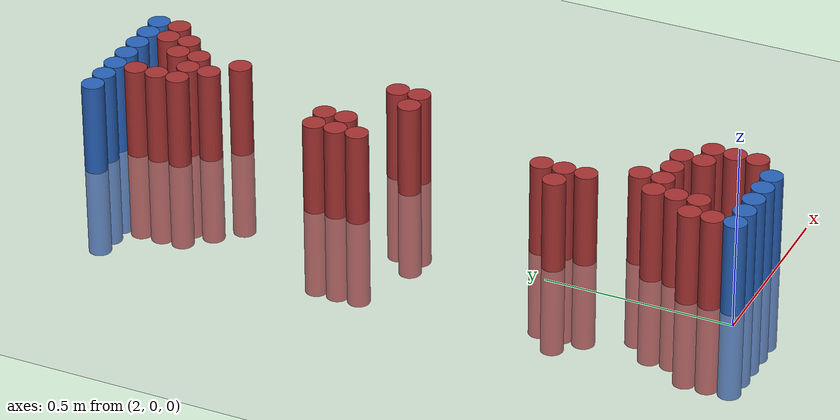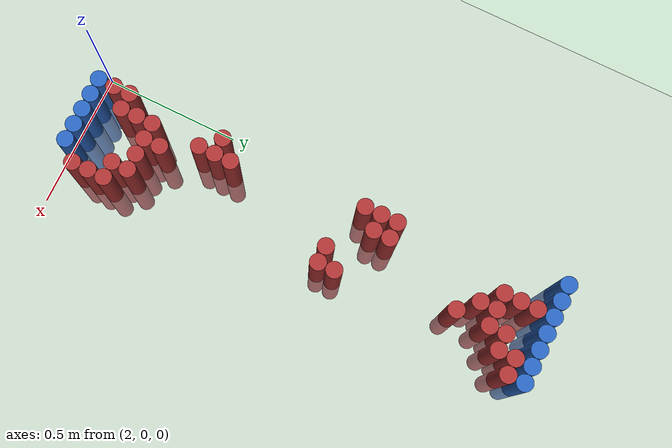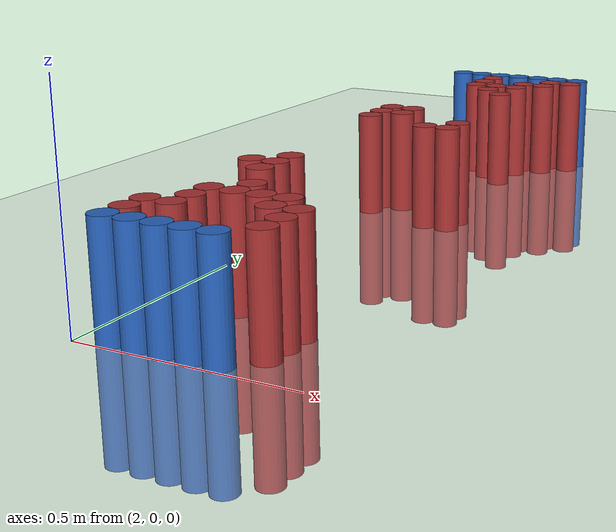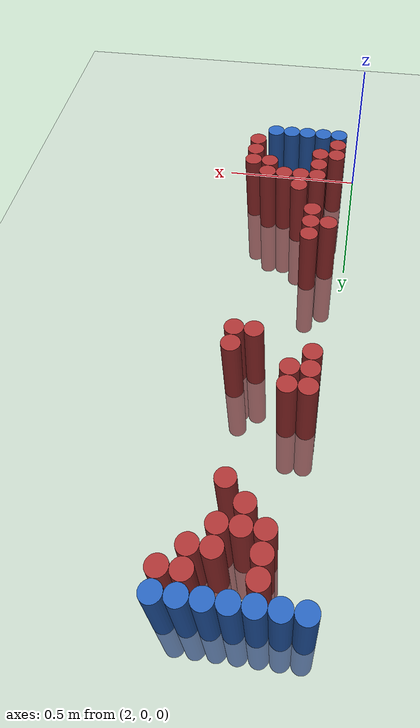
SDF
<sdf version="1.6">
 <world name="default">
  <model name="ground_plane">
   <static>1</static>
   <link name="link">
    <collision name="collision">
     <geometry><plane><normal>0 0 1</normal><size>100 100</size></plane></geometry>
     <surface><friction><ode><mu>100</mu><mu2>50</mu2></ode></friction></surface>
    </collision>
    <visual name="visual">
     <cast_shadows>0</cast_shadows>
     <geometry><plane><normal>0 0 1</normal><size>100 100</size></plane></geometry>
     <material>
      <script><uri>file://media/materials/scripts/gazebo.material</uri><name>Gazebo/Grey</name></script>
     </material>
    </visual>
   </link>
  </model>
  <model name="unit_cylinder_94">
   <static>1</static>
   <pose>2.010000 1.770000 0.000000 0.000000 0.000000 0.000000</pose>
   <link name="link">
    <inertial>
     <mass>1</mass>
     <inertia><ixx>0.145833</ixx><ixy>0</ixy><ixz>0</ixz><iyy>0.145833</iyy><iyz>0</iyz><izz>0.125</izz></inertia>
    </inertial>
    <collision name="collision">
     <geometry><cylinder><radius>0.030000</radius><length>0.5</length></cylinder></geometry>
    </collision>
    <visual name="visual">
     <geometry><cylinder><radius>0.030000</radius><length>0.5</length></cylinder></geometry>
     <material>
      <ambient>0.152000 0.379000 0.720000 1</ambient>
      <diffuse>0.152000 0.379000 0.720000 1</diffuse>
     </material>
     <material>
      <script><name>Gazebo/Grey</name><uri>file://media/materials/scripts/gazebo.material</uri></script>
     </material>
    </visual>
   </link>
  </model>
  <model name="unit_cylinder_95">
   <static>1</static>
   <pose>2.070000 1.770000 0.000000 0.000000 0.000000 0.000000</pose>
   <link name="link">
    <inertial>
     <mass>1</mass>
     <inertia><ixx>0.145833</ixx><ixy>0</ixy><ixz>0</ixz><iyy>0.145833</iyy><iyz>0</iyz><izz>0.125</izz></inertia>
    </inertial>
    <collision name="collision">
     <geometry><cylinder><radius>0.030000</radius><length>0.5</length></cylinder></geometry>
    </collision>
    <visual name="visual">
     <geometry><cylinder><radius>0.030000</radius><length>0.5</length></cylinder></geometry>
     <material>
      <ambient>0.152000 0.379000 0.720000 1</ambient>
      <diffuse>0.152000 0.379000 0.720000 1</diffuse>
     </material>
     <material>
      <script><name>Gazebo/Grey</name><uri>file://media/materials/scripts/gazebo.material</uri></script>
     </material>
    </visual>
   </link>
  </model>
  <model name="unit_cylinder_96">
   <static>1</static>
   <pose>2.130000 1.770000 0.000000 0.000000 0.000000 0.000000</pose>
   <link name="link">
    <inertial>
     <mass>1</mass>
     <inertia><ixx>0.145833</ixx><ixy>0</ixy><ixz>0</ixz><iyy>0.145833</iyy><iyz>0</iyz><izz>0.125</izz></inertia>
    </inertial>
    <collision name="collision">
     <geometry><cylinder><radius>0.030000</radius><length>0.5</length></cylinder></geometry>
    </collision>
    <visual name="visual">
     <geometry><cylinder><radius>0.030000</radius><length>0.5</length></cylinder></geometry>
     <material>
      <ambient>0.152000 0.379000 0.720000 1</ambient>
      <diffuse>0.152000 0.379000 0.720000 1</diffuse>
     </material>
     <material>
      <script><name>Gazebo/Grey</name><uri>file://media/materials/scripts/gazebo.material</uri></script>
     </material>
    </visual>
   </link>
  </model>
  <model name="unit_cylinder_97">
   <static>1</static>
   <pose>2.190000 1.770000 0.000000 0.000000 0.000000 0.000000</pose>
   <link name="link">
    <inertial>
     <mass>1</mass>
     <inertia><ixx>0.145833</ixx><ixy>0</ixy><ixz>0</ixz><iyy>0.145833</iyy><iyz>0</iyz><izz>0.125</izz></inertia>
    </inertial>
    <collision name="collision">
     <geometry><cylinder><radius>0.030000</radius><length>0.5</length></cylinder></geometry>
    </collision>
    <visual name="visual">
     <geometry><cylinder><radius>0.030000</radius><length>0.5</length></cylinder></geometry>
     <material>
      <ambient>0.152000 0.379000 0.720000 1</ambient>
      <diffuse>0.152000 0.379000 0.720000 1</diffuse>
     </material>
     <material>
      <script><name>Gazebo/Grey</name><uri>file://media/materials/scripts/gazebo.material</uri></script>
     </material>
    </visual>
   </link>
  </model>
  <model name="unit_cylinder_98">
   <static>1</static>
   <pose>2.250000 1.770000 0.000000 0.000000 0.000000 0.000000</pose>
   <link name="link">
    <inertial>
     <mass>1</mass>
     <inertia><ixx>0.145833</ixx><ixy>0</ixy><ixz>0</ixz><iyy>0.145833</iyy><iyz>0</iyz><izz>0.125</izz></inertia>
    </inertial>
    <collision name="collision">
     <geometry><cylinder><radius>0.030000</radius><length>0.5</length></cylinder></geometry>
    </collision>
    <visual name="visual">
     <geometry><cylinder><radius>0.030000</radius><length>0.5</length></cylinder></geometry>
     <material>
      <ambient>0.152000 0.379000 0.720000 1</ambient>
      <diffuse>0.152000 0.379000 0.720000 1</diffuse>
     </material>
     <material>
      <script><name>Gazebo/Grey</name><uri>file://media/materials/scripts/gazebo.material</uri></script>
     </material>
    </visual>
   </link>
  </model>
  <model name="unit_cylinder_99">
   <static>1</static>
   <pose>2.310000 1.770000 0.000000 0.000000 0.000000 0.000000</pose>
   <link name="link">
    <inertial>
     <mass>1</mass>
     <inertia><ixx>0.145833</ixx><ixy>0</ixy><ixz>0</ixz><iyy>0.145833</iyy><iyz>0</iyz><izz>0.125</izz></inertia>
    </inertial>
    <collision name="collision">
     <geometry><cylinder><radius>0.030000</radius><length>0.5</length></cylinder></geometry>
    </collision>
    <visual name="visual">
     <geometry><cylinder><radius>0.030000</radius><length>0.5</length></cylinder></geometry>
     <material>
      <ambient>0.152000 0.379000 0.720000 1</ambient>
      <diffuse>0.152000 0.379000 0.720000 1</diffuse>
     </material>
     <material>
      <script><name>Gazebo/Grey</name><uri>file://media/materials/scripts/gazebo.material</uri></script>
     </material>
    </visual>
   </link>
  </model>
  <model name="unit_cylinder_100">
   <static>1</static>
   <pose>2.370000 1.770000 0.000000 0.000000 0.000000 0.000000</pose>
   <link name="link">
    <inertial>
     <mass>1</mass>
     <inertia><ixx>0.145833</ixx><ixy>0</ixy><ixz>0</ixz><iyy>0.145833</iyy><iyz>0</iyz><izz>0.125</izz></inertia>
    </inertial>
    <collision name="collision">
     <geometry><cylinder><radius>0.030000</radius><length>0.5</length></cylinder></geometry>
    </collision>
    <visual name="visual">
     <geometry><cylinder><radius>0.030000</radius><length>0.5</length></cylinder></geometry>
     <material>
      <ambient>0.152000 0.379000 0.720000 1</ambient>
      <diffuse>0.152000 0.379000 0.720000 1</diffuse>
     </material>
     <material>
      <script><name>Gazebo/Grey</name><uri>file://media/materials/scripts/gazebo.material</uri></script>
     </material>
    </visual>
   </link>
  </model>
  <model name="unit_cylinder_125">
   <static>1</static>
   <pose>2.130000 1.710000 0.000000 0.000000 0.000000 0.000000</pose>
   <link name="link">
    <inertial>
     <mass>1</mass>
     <inertia><ixx>0.145833</ixx><ixy>0</ixy><ixz>0</ixz><iyy>0.145833</iyy><iyz>0</iyz><izz>0.125</izz></inertia>
    </inertial>
    <collision name="collision">
     <geometry><cylinder><radius>0.030000</radius><length>0.5</length></cylinder></geometry>
    </collision>
    <visual name="visual">
     <geometry><cylinder><radius>0.030000</radius><length>0.5</length></cylinder></geometry>
     <material>
      <ambient>0.648000 0.192000 0.192000 1</ambient>
      <diffuse>0.648000 0.192000 0.192000 1</diffuse>
     </material>
     <material>
      <script><name>Gazebo/Grey</name><uri>file://media/materials/scripts/gazebo.material</uri></script>
     </material>
    </visual>
   </link>
  </model>
  <model name="unit_cylinder_126">
   <static>1</static>
   <pose>2.310000 1.710000 0.000000 0.000000 0.000000 0.000000</pose>
   <link name="link">
    <inertial>
     <mass>1</mass>
     <inertia><ixx>0.145833</ixx><ixy>0</ixy><ixz>0</ixz><iyy>0.145833</iyy><iyz>0</iyz><izz>0.125</izz></inertia>
    </inertial>
    <collision name="collision">
     <geometry><cylinder><radius>0.030000</radius><length>0.5</length></cylinder></geometry>
    </collision>
    <visual name="visual">
     <geometry><cylinder><radius>0.030000</radius><length>0.5</length></cylinder></geometry>
     <material>
      <ambient>0.648000 0.192000 0.192000 1</ambient>
      <diffuse>0.648000 0.192000 0.192000 1</diffuse>
     </material>
     <material>
      <script><name>Gazebo/Grey</name><uri>file://media/materials/scripts/gazebo.material</uri></script>
     </material>
    </visual>
   </link>
  </model>
  <model name="unit_cylinder_127">
   <static>1</static>
   <pose>2.370000 1.710000 0.000000 0.000000 0.000000 0.000000</pose>
   <link name="link">
    <inertial>
     <mass>1</mass>
     <inertia><ixx>0.145833</ixx><ixy>0</ixy><ixz>0</ixz><iyy>0.145833</iyy><iyz>0</iyz><izz>0.125</izz></inertia>
    </inertial>
    <collision name="collision">
     <geometry><cylinder><radius>0.030000</radius><length>0.5</length></cylinder></geometry>
    </collision>
    <visual name="visual">
     <geometry><cylinder><radius>0.030000</radius><length>0.5</length></cylinder></geometry>
     <material>
      <ambient>0.648000 0.192000 0.192000 1</ambient>
      <diffuse>0.648000 0.192000 0.192000 1</diffuse>
     </material>
     <material>
      <script><name>Gazebo/Grey</name><uri>file://media/materials/scripts/gazebo.material</uri></script>
     </material>
    </visual>
   </link>
  </model>
  <model name="unit_cylinder_138">
   <static>1</static>
   <pose>2.130000 1.650000 0.000000 0.000000 0.000000 0.000000</pose>
   <link name="link">
    <inertial>
     <mass>1</mass>
     <inertia><ixx>0.145833</ixx><ixy>0</ixy><ixz>0</ixz><iyy>0.145833</iyy><iyz>0</iyz><izz>0.125</izz></inertia>
    </inertial>
    <collision name="collision">
     <geometry><cylinder><radius>0.030000</radius><length>0.5</length></cylinder></geometry>
    </collision>
    <visual name="visual">
     <geometry><cylinder><radius>0.030000</radius><length>0.5</length></cylinder></geometry>
     <material>
      <ambient>0.648000 0.192000 0.192000 1</ambient>
      <diffuse>0.648000 0.192000 0.192000 1</diffuse>
     </material>
     <material>
      <script><name>Gazebo/Grey</name><uri>file://media/materials/scripts/gazebo.material</uri></script>
     </material>
    </visual>
   </link>
  </model>
  <model name="unit_cylinder_139">
   <static>1</static>
   <pose>2.250000 1.650000 0.000000 0.000000 0.000000 0.000000</pose>
   <link name="link">
    <inertial>
     <mass>1</mass>
     <inertia><ixx>0.145833</ixx><ixy>0</ixy><ixz>0</ixz><iyy>0.145833</iyy><iyz>0</iyz><izz>0.125</izz></inertia>
    </inertial>
    <collision name="collision">
     <geometry><cylinder><radius>0.030000</radius><length>0.5</length></cylinder></geometry>
    </collision>
    <visual name="visual">
     <geometry><cylinder><radius>0.030000</radius><length>0.5</length></cylinder></geometry>
     <material>
      <ambient>0.648000 0.192000 0.192000 1</ambient>
      <diffuse>0.648000 0.192000 0.192000 1</diffuse>
     </material>
     <material>
      <script><name>Gazebo/Grey</name><uri>file://media/materials/scripts/gazebo.material</uri></script>
     </material>
    </visual>
   </link>
  </model>
  <model name="unit_cylinder_140">
   <static>1</static>
   <pose>2.310000 1.650000 0.000000 0.000000 0.000000 0.000000</pose>
   <link name="link">
    <inertial>
     <mass>1</mass>
     <inertia><ixx>0.145833</ixx><ixy>0</ixy><ixz>0</ixz><iyy>0.145833</iyy><iyz>0</iyz><izz>0.125</izz></inertia>
    </inertial>
    <collision name="collision">
     <geometry><cylinder><radius>0.030000</radius><length>0.5</length></cylinder></geometry>
    </collision>
    <visual name="visual">
     <geometry><cylinder><radius>0.030000</radius><length>0.5</length></cylinder></geometry>
     <material>
      <ambient>0.648000 0.192000 0.192000 1</ambient>
      <diffuse>0.648000 0.192000 0.192000 1</diffuse>
     </material>
     <material>
      <script><name>Gazebo/Grey</name><uri>file://media/materials/scripts/gazebo.material</uri></script>
     </material>
    </visual>
   </link>
  </model>
  <model name="unit_cylinder_144">
   <static>1</static>
   <pose>2.130000 1.590000 0.000000 0.000000 0.000000 0.000000</pose>
   <link name="link">
    <inertial>
     <mass>1</mass>
     <inertia><ixx>0.145833</ixx><ixy>0</ixy><ixz>0</ixz><iyy>0.145833</iyy><iyz>0</iyz><izz>0.125</izz></inertia>
    </inertial>
    <collision name="collision">
     <geometry><cylinder><radius>0.030000</radius><length>0.5</length></cylinder></geometry>
    </collision>
    <visual name="visual">
     <geometry><cylinder><radius>0.030000</radius><length>0.5</length></cylinder></geometry>
     <material>
      <ambient>0.648000 0.192000 0.192000 1</ambient>
      <diffuse>0.648000 0.192000 0.192000 1</diffuse>
     </material>
     <material>
      <script><name>Gazebo/Grey</name><uri>file://media/materials/scripts/gazebo.material</uri></script>
     </material>
    </visual>
   </link>
  </model>
  <model name="unit_cylinder_145">
   <static>1</static>
   <pose>2.190000 1.590000 0.000000 0.000000 0.000000 0.000000</pose>
   <link name="link">
    <inertial>
     <mass>1</mass>
     <inertia><ixx>0.145833</ixx><ixy>0</ixy><ixz>0</ixz><iyy>0.145833</iyy><iyz>0</iyz><izz>0.125</izz></inertia>
    </inertial>
    <collision name="collision">
     <geometry><cylinder><radius>0.030000</radius><length>0.5</length></cylinder></geometry>
    </collision>
    <visual name="visual">
     <geometry><cylinder><radius>0.030000</radius><length>0.5</length></cylinder></geometry>
     <material>
      <ambient>0.648000 0.192000 0.192000 1</ambient>
      <diffuse>0.648000 0.192000 0.192000 1</diffuse>
     </material>
     <material>
      <script><name>Gazebo/Grey</name><uri>file://media/materials/scripts/gazebo.material</uri></script>
     </material>
    </visual>
   </link>
  </model>
  <model name="unit_cylinder_146">
   <static>1</static>
   <pose>2.250000 1.590000 0.000000 0.000000 0.000000 0.000000</pose>
   <link name="link">
    <inertial>
     <mass>1</mass>
     <inertia><ixx>0.145833</ixx><ixy>0</ixy><ixz>0</ixz><iyy>0.145833</iyy><iyz>0</iyz><izz>0.125</izz></inertia>
    </inertial>
    <collision name="collision">
     <geometry><cylinder><radius>0.030000</radius><length>0.5</length></cylinder></geometry>
    </collision>
    <visual name="visual">
     <geometry><cylinder><radius>0.030000</radius><length>0.5</length></cylinder></geometry>
     <material>
      <ambient>0.648000 0.192000 0.192000 1</ambient>
      <diffuse>0.648000 0.192000 0.192000 1</diffuse>
     </material>
     <material>
      <script><name>Gazebo/Grey</name><uri>file://media/materials/scripts/gazebo.material</uri></script>
     </material>
    </visual>
   </link>
  </model>
  <model name="unit_cylinder_149">
   <static>1</static>
   <pose>2.190000 1.530000 0.000000 0.000000 0.000000 0.000000</pose>
   <link name="link">
    <inertial>
     <mass>1</mass>
     <inertia><ixx>0.145833</ixx><ixy>0</ixy><ixz>0</ixz><iyy>0.145833</iyy><iyz>0</iyz><izz>0.125</izz></inertia>
    </inertial>
    <collision name="collision">
     <geometry><cylinder><radius>0.030000</radius><length>0.5</length></cylinder></geometry>
    </collision>
    <visual name="visual">
     <geometry><cylinder><radius>0.030000</radius><length>0.5</length></cylinder></geometry>
     <material>
      <ambient>0.648000 0.192000 0.192000 1</ambient>
      <diffuse>0.648000 0.192000 0.192000 1</diffuse>
     </material>
     <material>
      <script><name>Gazebo/Grey</name><uri>file://media/materials/scripts/gazebo.material</uri></script>
     </material>
    </visual>
   </link>
  </model>
  <model name="unit_cylinder_154">
   <static>1</static>
   <pose>2.250000 1.470000 0.000000 0.000000 0.000000 0.000000</pose>
   <link name="link">
    <inertial>
     <mass>1</mass>
     <inertia><ixx>0.145833</ixx><ixy>0</ixy><ixz>0</ixz><iyy>0.145833</iyy><iyz>0</iyz><izz>0.125</izz></inertia>
    </inertial>
    <collision name="collision">
     <geometry><cylinder><radius>0.030000</radius><length>0.5</length></cylinder></geometry>
    </collision>
    <visual name="visual">
     <geometry><cylinder><radius>0.030000</radius><length>0.5</length></cylinder></geometry>
     <material>
      <ambient>0.648000 0.192000 0.192000 1</ambient>
      <diffuse>0.648000 0.192000 0.192000 1</diffuse>
     </material>
     <material>
      <script><name>Gazebo/Grey</name><uri>file://media/materials/scripts/gazebo.material</uri></script>
     </material>
    </visual>
   </link>
  </model>
  <model name="unit_cylinder_174">
   <static>1</static>
   <pose>2.070000 1.170000 0.000000 0.000000 0.000000 0.000000</pose>
   <link name="link">
    <inertial>
     <mass>1</mass>
     <inertia><ixx>0.145833</ixx><ixy>0</ixy><ixz>0</ixz><iyy>0.145833</iyy><iyz>0</iyz><izz>0.125</izz></inertia>
    </inertial>
    <collision name="collision">
     <geometry><cylinder><radius>0.030000</radius><length>0.5</length></cylinder></geometry>
    </collision>
    <visual name="visual">
     <geometry><cylinder><radius>0.030000</radius><length>0.5</length></cylinder></geometry>
     <material>
      <ambient>0.648000 0.192000 0.192000 1</ambient>
      <diffuse>0.648000 0.192000 0.192000 1</diffuse>
     </material>
     <material>
      <script><name>Gazebo/Grey</name><uri>file://media/materials/scripts/gazebo.material</uri></script>
     </material>
    </visual>
   </link>
  </model>
  <model name="unit_cylinder_175">
   <static>1</static>
   <pose>2.130000 1.170000 0.000000 0.000000 0.000000 0.000000</pose>
   <link name="link">
    <inertial>
     <mass>1</mass>
     <inertia><ixx>0.145833</ixx><ixy>0</ixy><ixz>0</ixz><iyy>0.145833</iyy><iyz>0</iyz><izz>0.125</izz></inertia>
    </inertial>
    <collision name="collision">
     <geometry><cylinder><radius>0.030000</radius><length>0.5</length></cylinder></geometry>
    </collision>
    <visual name="visual">
     <geometry><cylinder><radius>0.030000</radius><length>0.5</length></cylinder></geometry>
     <material>
      <ambient>0.648000 0.192000 0.192000 1</ambient>
      <diffuse>0.648000 0.192000 0.192000 1</diffuse>
     </material>
     <material>
      <script><name>Gazebo/Grey</name><uri>file://media/materials/scripts/gazebo.material</uri></script>
     </material>
    </visual>
   </link>
  </model>
  <model name="unit_cylinder_179">
   <static>1</static>
   <pose>2.070000 1.110000 0.000000 0.000000 0.000000 0.000000</pose>
   <link name="link">
    <inertial>
     <mass>1</mass>
     <inertia><ixx>0.145833</ixx><ixy>0</ixy><ixz>0</ixz><iyy>0.145833</iyy><iyz>0</iyz><izz>0.125</izz></inertia>
    </inertial>
    <collision name="collision">
     <geometry><cylinder><radius>0.030000</radius><length>0.5</length></cylinder></geometry>
    </collision>
    <visual name="visual">
     <geometry><cylinder><radius>0.030000</radius><length>0.5</length></cylinder></geometry>
     <material>
      <ambient>0.648000 0.192000 0.192000 1</ambient>
      <diffuse>0.648000 0.192000 0.192000 1</diffuse>
     </material>
     <material>
      <script><name>Gazebo/Grey</name><uri>file://media/materials/scripts/gazebo.material</uri></script>
     </material>
    </visual>
   </link>
  </model>
  <model name="unit_cylinder_180">
   <static>1</static>
   <pose>2.130000 1.110000 0.000000 0.000000 0.000000 0.000000</pose>
   <link name="link">
    <inertial>
     <mass>1</mass>
     <inertia><ixx>0.145833</ixx><ixy>0</ixy><ixz>0</ixz><iyy>0.145833</iyy><iyz>0</iyz><izz>0.125</izz></inertia>
    </inertial>
    <collision name="collision">
     <geometry><cylinder><radius>0.030000</radius><length>0.5</length></cylinder></geometry>
    </collision>
    <visual name="visual">
     <geometry><cylinder><radius>0.030000</radius><length>0.5</length></cylinder></geometry>
     <material>
      <ambient>0.648000 0.192000 0.192000 1</ambient>
      <diffuse>0.648000 0.192000 0.192000 1</diffuse>
     </material>
     <material>
      <script><name>Gazebo/Grey</name><uri>file://media/materials/scripts/gazebo.material</uri></script>
     </material>
    </visual>
   </link>
  </model>
  <model name="unit_cylinder_181">
   <static>1</static>
   <pose>2.070000 1.050000 0.000000 0.000000 0.000000 0.000000</pose>
   <link name="link">
    <inertial>
     <mass>1</mass>
     <inertia><ixx>0.145833</ixx><ixy>0</ixy><ixz>0</ixz><iyy>0.145833</iyy><iyz>0</iyz><izz>0.125</izz></inertia>
    </inertial>
    <collision name="collision">
     <geometry><cylinder><radius>0.030000</radius><length>0.5</length></cylinder></geometry>
    </collision>
    <visual name="visual">
     <geometry><cylinder><radius>0.030000</radius><length>0.5</length></cylinder></geometry>
     <material>
      <ambient>0.648000 0.192000 0.192000 1</ambient>
      <diffuse>0.648000 0.192000 0.192000 1</diffuse>
     </material>
     <material>
      <script><name>Gazebo/Grey</name><uri>file://media/materials/scripts/gazebo.material</uri></script>
     </material>
    </visual>
   </link>
  </model>
  <model name="unit_cylinder_182">
   <static>1</static>
   <pose>2.310000 1.050000 0.000000 0.000000 0.000000 0.000000</pose>
   <link name="link">
    <inertial>
     <mass>1</mass>
     <inertia><ixx>0.145833</ixx><ixy>0</ixy><ixz>0</ixz><iyy>0.145833</iyy><iyz>0</iyz><izz>0.125</izz></inertia>
    </inertial>
    <collision name="collision">
     <geometry><cylinder><radius>0.030000</radius><length>0.5</length></cylinder></geometry>
    </collision>
    <visual name="visual">
     <geometry><cylinder><radius>0.030000</radius><length>0.5</length></cylinder></geometry>
     <material>
      <ambient>0.648000 0.192000 0.192000 1</ambient>
      <diffuse>0.648000 0.192000 0.192000 1</diffuse>
     </material>
     <material>
      <script><name>Gazebo/Grey</name><uri>file://media/materials/scripts/gazebo.material</uri></script>
     </material>
    </visual>
   </link>
  </model>
  <model name="unit_cylinder_183">
   <static>1</static>
   <pose>2.250000 0.990000 0.000000 0.000000 0.000000 0.000000</pose>
   <link name="link">
    <inertial>
     <mass>1</mass>
     <inertia><ixx>0.145833</ixx><ixy>0</ixy><ixz>0</ixz><iyy>0.145833</iyy><iyz>0</iyz><izz>0.125</izz></inertia>
    </inertial>
    <collision name="collision">
     <geometry><cylinder><radius>0.030000</radius><length>0.5</length></cylinder></geometry>
    </collision>
    <visual name="visual">
     <geometry><cylinder><radius>0.030000</radius><length>0.5</length></cylinder></geometry>
     <material>
      <ambient>0.648000 0.192000 0.192000 1</ambient>
      <diffuse>0.648000 0.192000 0.192000 1</diffuse>
     </material>
     <material>
      <script><name>Gazebo/Grey</name><uri>file://media/materials/scripts/gazebo.material</uri></script>
     </material>
    </visual>
   </link>
  </model>
  <model name="unit_cylinder_184">
   <static>1</static>
   <pose>2.310000 0.990000 0.000000 0.000000 0.000000 0.000000</pose>
   <link name="link">
    <inertial>
     <mass>1</mass>
     <inertia><ixx>0.145833</ixx><ixy>0</ixy><ixz>0</ixz><iyy>0.145833</iyy><iyz>0</iyz><izz>0.125</izz></inertia>
    </inertial>
    <collision name="collision">
     <geometry><cylinder><radius>0.030000</radius><length>0.5</length></cylinder></geometry>
    </collision>
    <visual name="visual">
     <geometry><cylinder><radius>0.030000</radius><length>0.5</length></cylinder></geometry>
     <material>
      <ambient>0.648000 0.192000 0.192000 1</ambient>
      <diffuse>0.648000 0.192000 0.192000 1</diffuse>
     </material>
     <material>
      <script><name>Gazebo/Grey</name><uri>file://media/materials/scripts/gazebo.material</uri></script>
     </material>
    </visual>
   </link>
  </model>
  <model name="unit_cylinder_204">
   <static>1</static>
   <pose>2.130000 0.570000 0.000000 0.000000 0.000000 0.000000</pose>
   <link name="link">
    <inertial>
     <mass>1</mass>
     <inertia><ixx>0.145833</ixx><ixy>0</ixy><ixz>0</ixz><iyy>0.145833</iyy><iyz>0</iyz><izz>0.125</izz></inertia>
    </inertial>
    <collision name="collision">
     <geometry><cylinder><radius>0.030000</radius><length>0.5</length></cylinder></geometry>
    </collision>
    <visual name="visual">
     <geometry><cylinder><radius>0.030000</radius><length>0.5</length></cylinder></geometry>
     <material>
      <ambient>0.648000 0.192000 0.192000 1</ambient>
      <diffuse>0.648000 0.192000 0.192000 1</diffuse>
     </material>
     <material>
      <script><name>Gazebo/Grey</name><uri>file://media/materials/scripts/gazebo.material</uri></script>
     </material>
    </visual>
   </link>
  </model>
  <model name="unit_cylinder_210">
   <static>1</static>
   <pose>2.070000 0.510000 0.000000 0.000000 0.000000 0.000000</pose>
   <link name="link">
    <inertial>
     <mass>1</mass>
     <inertia><ixx>0.145833</ixx><ixy>0</ixy><ixz>0</ixz><iyy>0.145833</iyy><iyz>0</iyz><izz>0.125</izz></inertia>
    </inertial>
    <collision name="collision">
     <geometry><cylinder><radius>0.030000</radius><length>0.5</length></cylinder></geometry>
    </collision>
    <visual name="visual">
     <geometry><cylinder><radius>0.030000</radius><length>0.5</length></cylinder></geometry>
     <material>
      <ambient>0.648000 0.192000 0.192000 1</ambient>
      <diffuse>0.648000 0.192000 0.192000 1</diffuse>
     </material>
     <material>
      <script><name>Gazebo/Grey</name><uri>file://media/materials/scripts/gazebo.material</uri></script>
     </material>
    </visual>
   </link>
  </model>
  <model name="unit_cylinder_211">
   <static>1</static>
   <pose>2.130000 0.510000 0.000000 0.000000 0.000000 0.000000</pose>
   <link name="link">
    <inertial>
     <mass>1</mass>
     <inertia><ixx>0.145833</ixx><ixy>0</ixy><ixz>0</ixz><iyy>0.145833</iyy><iyz>0</iyz><izz>0.125</izz></inertia>
    </inertial>
    <collision name="collision">
     <geometry><cylinder><radius>0.030000</radius><length>0.5</length></cylinder></geometry>
    </collision>
    <visual name="visual">
     <geometry><cylinder><radius>0.030000</radius><length>0.5</length></cylinder></geometry>
     <material>
      <ambient>0.648000 0.192000 0.192000 1</ambient>
      <diffuse>0.648000 0.192000 0.192000 1</diffuse>
     </material>
     <material>
      <script><name>Gazebo/Grey</name><uri>file://media/materials/scripts/gazebo.material</uri></script>
     </material>
    </visual>
   </link>
  </model>
  <model name="unit_cylinder_213">
   <static>1</static>
   <pose>2.130000 0.450000 0.000000 0.000000 0.000000 0.000000</pose>
   <link name="link">
    <inertial>
     <mass>1</mass>
     <inertia><ixx>0.145833</ixx><ixy>0</ixy><ixz>0</ixz><iyy>0.145833</iyy><iyz>0</iyz><izz>0.125</izz></inertia>
    </inertial>
    <collision name="collision">
     <geometry><cylinder><radius>0.030000</radius><length>0.5</length></cylinder></geometry>
    </collision>
    <visual name="visual">
     <geometry><cylinder><radius>0.030000</radius><length>0.5</length></cylinder></geometry>
     <material>
      <ambient>0.648000 0.192000 0.192000 1</ambient>
      <diffuse>0.648000 0.192000 0.192000 1</diffuse>
     </material>
     <material>
      <script><name>Gazebo/Grey</name><uri>file://media/materials/scripts/gazebo.material</uri></script>
     </material>
    </visual>
   </link>
  </model>
  <model name="unit_cylinder_216">
   <static>1</static>
   <pose>2.190000 0.330000 0.000000 0.000000 0.000000 0.000000</pose>
   <link name="link">
    <inertial>
     <mass>1</mass>
     <inertia><ixx>0.145833</ixx><ixy>0</ixy><ixz>0</ixz><iyy>0.145833</iyy><iyz>0</iyz><izz>0.125</izz></inertia>
    </inertial>
    <collision name="collision">
     <geometry><cylinder><radius>0.030000</radius><length>0.5</length></cylinder></geometry>
    </collision>
    <visual name="visual">
     <geometry><cylinder><radius>0.030000</radius><length>0.5</length></cylinder></geometry>
     <material>
      <ambient>0.648000 0.192000 0.192000 1</ambient>
      <diffuse>0.648000 0.192000 0.192000 1</diffuse>
     </material>
     <material>
      <script><name>Gazebo/Grey</name><uri>file://media/materials/scripts/gazebo.material</uri></script>
     </material>
    </visual>
   </link>
  </model>
  <model name="unit_cylinder_219">
   <static>1</static>
   <pose>2.130000 0.270000 0.000000 0.000000 0.000000 0.000000</pose>
   <link name="link">
    <inertial>
     <mass>1</mass>
     <inertia><ixx>0.145833</ixx><ixy>0</ixy><ixz>0</ixz><iyy>0.145833</iyy><iyz>0</iyz><izz>0.125</izz></inertia>
    </inertial>
    <collision name="collision">
     <geometry><cylinder><radius>0.030000</radius><length>0.5</length></cylinder></geometry>
    </collision>
    <visual name="visual">
     <geometry><cylinder><radius>0.030000</radius><length>0.5</length></cylinder></geometry>
     <material>
      <ambient>0.648000 0.192000 0.192000 1</ambient>
      <diffuse>0.648000 0.192000 0.192000 1</diffuse>
     </material>
     <material>
      <script><name>Gazebo/Grey</name><uri>file://media/materials/scripts/gazebo.material</uri></script>
     </material>
    </visual>
   </link>
  </model>
  <model name="unit_cylinder_220">
   <static>1</static>
   <pose>2.190000 0.270000 0.000000 0.000000 0.000000 0.000000</pose>
   <link name="link">
    <inertial>
     <mass>1</mass>
     <inertia><ixx>0.145833</ixx><ixy>0</ixy><ixz>0</ixz><iyy>0.145833</iyy><iyz>0</iyz><izz>0.125</izz></inertia>
    </inertial>
    <collision name="collision">
     <geometry><cylinder><radius>0.030000</radius><length>0.5</length></cylinder></geometry>
    </collision>
    <visual name="visual">
     <geometry><cylinder><radius>0.030000</radius><length>0.5</length></cylinder></geometry>
     <material>
      <ambient>0.648000 0.192000 0.192000 1</ambient>
      <diffuse>0.648000 0.192000 0.192000 1</diffuse>
     </material>
     <material>
      <script><name>Gazebo/Grey</name><uri>file://media/materials/scripts/gazebo.material</uri></script>
     </material>
    </visual>
   </link>
  </model>
  <model name="unit_cylinder_221">
   <static>1</static>
   <pose>2.250000 0.270000 0.000000 0.000000 0.000000 0.000000</pose>
   <link name="link">
    <inertial>
     <mass>1</mass>
     <inertia><ixx>0.145833</ixx><ixy>0</ixy><ixz>0</ixz><iyy>0.145833</iyy><iyz>0</iyz><izz>0.125</izz></inertia>
    </inertial>
    <collision name="collision">
     <geometry><cylinder><radius>0.030000</radius><length>0.5</length></cylinder></geometry>
    </collision>
    <visual name="visual">
     <geometry><cylinder><radius>0.030000</radius><length>0.5</length></cylinder></geometry>
     <material>
      <ambient>0.648000 0.192000 0.192000 1</ambient>
      <diffuse>0.648000 0.192000 0.192000 1</diffuse>
     </material>
     <material>
      <script><name>Gazebo/Grey</name><uri>file://media/materials/scripts/gazebo.material</uri></script>
     </material>
    </visual>
   </link>
  </model>
  <model name="unit_cylinder_222">
   <static>1</static>
   <pose>2.310000 0.270000 0.000000 0.000000 0.000000 0.000000</pose>
   <link name="link">
    <inertial>
     <mass>1</mass>
     <inertia><ixx>0.145833</ixx><ixy>0</ixy><ixz>0</ixz><iyy>0.145833</iyy><iyz>0</iyz><izz>0.125</izz></inertia>
    </inertial>
    <collision name="collision">
     <geometry><cylinder><radius>0.030000</radius><length>0.5</length></cylinder></geometry>
    </collision>
    <visual name="visual">
     <geometry><cylinder><radius>0.030000</radius><length>0.5</length></cylinder></geometry>
     <material>
      <ambient>0.648000 0.192000 0.192000 1</ambient>
      <diffuse>0.648000 0.192000 0.192000 1</diffuse>
     </material>
     <material>
      <script><name>Gazebo/Grey</name><uri>file://media/materials/scripts/gazebo.material</uri></script>
     </material>
    </visual>
   </link>
  </model>
  <model name="unit_cylinder_226">
   <static>1</static>
   <pose>2.130000 0.210000 0.000000 0.000000 0.000000 0.000000</pose>
   <link name="link">
    <inertial>
     <mass>1</mass>
     <inertia><ixx>0.145833</ixx><ixy>0</ixy><ixz>0</ixz><iyy>0.145833</iyy><iyz>0</iyz><izz>0.125</izz></inertia>
    </inertial>
    <collision name="collision">
     <geometry><cylinder><radius>0.030000</radius><length>0.5</length></cylinder></geometry>
    </collision>
    <visual name="visual">
     <geometry><cylinder><radius>0.030000</radius><length>0.5</length></cylinder></geometry>
     <material>
      <ambient>0.648000 0.192000 0.192000 1</ambient>
      <diffuse>0.648000 0.192000 0.192000 1</diffuse>
     </material>
     <material>
      <script><name>Gazebo/Grey</name><uri>file://media/materials/scripts/gazebo.material</uri></script>
     </material>
    </visual>
   </link>
  </model>
  <model name="unit_cylinder_227">
   <static>1</static>
   <pose>2.310000 0.210000 0.000000 0.000000 0.000000 0.000000</pose>
   <link name="link">
    <inertial>
     <mass>1</mass>
     <inertia><ixx>0.145833</ixx><ixy>0</ixy><ixz>0</ixz><iyy>0.145833</iyy><iyz>0</iyz><izz>0.125</izz></inertia>
    </inertial>
    <collision name="collision">
     <geometry><cylinder><radius>0.030000</radius><length>0.5</length></cylinder></geometry>
    </collision>
    <visual name="visual">
     <geometry><cylinder><radius>0.030000</radius><length>0.5</length></cylinder></geometry>
     <material>
      <ambient>0.648000 0.192000 0.192000 1</ambient>
      <diffuse>0.648000 0.192000 0.192000 1</diffuse>
     </material>
     <material>
      <script><name>Gazebo/Grey</name><uri>file://media/materials/scripts/gazebo.material</uri></script>
     </material>
    </visual>
   </link>
  </model>
  <model name="unit_cylinder_228">
   <static>1</static>
   <pose>2.370000 0.210000 0.000000 0.000000 0.000000 0.000000</pose>
   <link name="link">
    <inertial>
     <mass>1</mass>
     <inertia><ixx>0.145833</ixx><ixy>0</ixy><ixz>0</ixz><iyy>0.145833</iyy><iyz>0</iyz><izz>0.125</izz></inertia>
    </inertial>
    <collision name="collision">
     <geometry><cylinder><radius>0.030000</radius><length>0.5</length></cylinder></geometry>
    </collision>
    <visual name="visual">
     <geometry><cylinder><radius>0.030000</radius><length>0.5</length></cylinder></geometry>
     <material>
      <ambient>0.648000 0.192000 0.192000 1</ambient>
      <diffuse>0.648000 0.192000 0.192000 1</diffuse>
     </material>
     <material>
      <script><name>Gazebo/Grey</name><uri>file://media/materials/scripts/gazebo.material</uri></script>
     </material>
    </visual>
   </link>
  </model>
  <model name="unit_cylinder_233">
   <static>1</static>
   <pose>2.070000 0.150000 0.000000 0.000000 0.000000 0.000000</pose>
   <link name="link">
    <inertial>
     <mass>1</mass>
     <inertia><ixx>0.145833</ixx><ixy>0</ixy><ixz>0</ixz><iyy>0.145833</iyy><iyz>0</iyz><izz>0.125</izz></inertia>
    </inertial>
    <collision name="collision">
     <geometry><cylinder><radius>0.030000</radius><length>0.5</length></cylinder></geometry>
    </collision>
    <visual name="visual">
     <geometry><cylinder><radius>0.030000</radius><length>0.5</length></cylinder></geometry>
     <material>
      <ambient>0.648000 0.192000 0.192000 1</ambient>
      <diffuse>0.648000 0.192000 0.192000 1</diffuse>
     </material>
     <material>
      <script><name>Gazebo/Grey</name><uri>file://media/materials/scripts/gazebo.material</uri></script>
     </material>
    </visual>
   </link>
  </model>
  <model name="unit_cylinder_234">
   <static>1</static>
   <pose>2.130000 0.150000 0.000000 0.000000 0.000000 0.000000</pose>
   <link name="link">
    <inertial>
     <mass>1</mass>
     <inertia><ixx>0.145833</ixx><ixy>0</ixy><ixz>0</ixz><iyy>0.145833</iyy><iyz>0</iyz><izz>0.125</izz></inertia>
    </inertial>
    <collision name="collision">
     <geometry><cylinder><radius>0.030000</radius><length>0.5</length></cylinder></geometry>
    </collision>
    <visual name="visual">
     <geometry><cylinder><radius>0.030000</radius><length>0.5</length></cylinder></geometry>
     <material>
      <ambient>0.648000 0.192000 0.192000 1</ambient>
      <diffuse>0.648000 0.192000 0.192000 1</diffuse>
     </material>
     <material>
      <script><name>Gazebo/Grey</name><uri>file://media/materials/scripts/gazebo.material</uri></script>
     </material>
    </visual>
   </link>
  </model>
  <model name="unit_cylinder_235">
   <static>1</static>
   <pose>2.370000 0.150000 0.000000 0.000000 0.000000 0.000000</pose>
   <link name="link">
    <inertial>
     <mass>1</mass>
     <inertia><ixx>0.145833</ixx><ixy>0</ixy><ixz>0</ixz><iyy>0.145833</iyy><iyz>0</iyz><izz>0.125</izz></inertia>
    </inertial>
    <collision name="collision">
     <geometry><cylinder><radius>0.030000</radius><length>0.5</length></cylinder></geometry>
    </collision>
    <visual name="visual">
     <geometry><cylinder><radius>0.030000</radius><length>0.5</length></cylinder></geometry>
     <material>
      <ambient>0.648000 0.192000 0.192000 1</ambient>
      <diffuse>0.648000 0.192000 0.192000 1</diffuse>
     </material>
     <material>
      <script><name>Gazebo/Grey</name><uri>file://media/materials/scripts/gazebo.material</uri></script>
     </material>
    </visual>
   </link>
  </model>
  <model name="unit_cylinder_241">
   <static>1</static>
   <pose>2.070000 0.090000 0.000000 0.000000 0.000000 0.000000</pose>
   <link name="link">
    <inertial>
     <mass>1</mass>
     <inertia><ixx>0.145833</ixx><ixy>0</ixy><ixz>0</ixz><iyy>0.145833</iyy><iyz>0</iyz><izz>0.125</izz></inertia>
    </inertial>
    <collision name="collision">
     <geometry><cylinder><radius>0.030000</radius><length>0.5</length></cylinder></geometry>
    </collision>
    <visual name="visual">
     <geometry><cylinder><radius>0.030000</radius><length>0.5</length></cylinder></geometry>
     <material>
      <ambient>0.648000 0.192000 0.192000 1</ambient>
      <diffuse>0.648000 0.192000 0.192000 1</diffuse>
     </material>
     <material>
      <script><name>Gazebo/Grey</name><uri>file://media/materials/scripts/gazebo.material</uri></script>
     </material>
    </visual>
   </link>
  </model>
  <model name="unit_cylinder_242">
   <static>1</static>
   <pose>2.370000 0.090000 0.000000 0.000000 0.000000 0.000000</pose>
   <link name="link">
    <inertial>
     <mass>1</mass>
     <inertia><ixx>0.145833</ixx><ixy>0</ixy><ixz>0</ixz><iyy>0.145833</iyy><iyz>0</iyz><izz>0.125</izz></inertia>
    </inertial>
    <collision name="collision">
     <geometry><cylinder><radius>0.030000</radius><length>0.5</length></cylinder></geometry>
    </collision>
    <visual name="visual">
     <geometry><cylinder><radius>0.030000</radius><length>0.5</length></cylinder></geometry>
     <material>
      <ambient>0.648000 0.192000 0.192000 1</ambient>
      <diffuse>0.648000 0.192000 0.192000 1</diffuse>
     </material>
     <material>
      <script><name>Gazebo/Grey</name><uri>file://media/materials/scripts/gazebo.material</uri></script>
     </material>
    </visual>
   </link>
  </model>
  <model name="unit_cylinder_254">
   <static>1</static>
   <pose>2.070000 0.030000 0.000000 0.000000 0.000000 0.000000</pose>
   <link name="link">
    <inertial>
     <mass>1</mass>
     <inertia><ixx>0.145833</ixx><ixy>0</ixy><ixz>0</ixz><iyy>0.145833</iyy><iyz>0</iyz><izz>0.125</izz></inertia>
    </inertial>
    <collision name="collision">
     <geometry><cylinder><radius>0.030000</radius><length>0.5</length></cylinder></geometry>
    </collision>
    <visual name="visual">
     <geometry><cylinder><radius>0.030000</radius><length>0.5</length></cylinder></geometry>
     <material>
      <ambient>0.152000 0.379000 0.720000 1</ambient>
      <diffuse>0.152000 0.379000 0.720000 1</diffuse>
     </material>
     <material>
      <script><name>Gazebo/Grey</name><uri>file://media/materials/scripts/gazebo.material</uri></script>
     </material>
    </visual>
   </link>
  </model>
  <model name="unit_cylinder_255">
   <static>1</static>
   <pose>2.130000 0.030000 0.000000 0.000000 0.000000 0.000000</pose>
   <link name="link">
    <inertial>
     <mass>1</mass>
     <inertia><ixx>0.145833</ixx><ixy>0</ixy><ixz>0</ixz><iyy>0.145833</iyy><iyz>0</iyz><izz>0.125</izz></inertia>
    </inertial>
    <collision name="collision">
     <geometry><cylinder><radius>0.030000</radius><length>0.5</length></cylinder></geometry>
    </collision>
    <visual name="visual">
     <geometry><cylinder><radius>0.030000</radius><length>0.5</length></cylinder></geometry>
     <material>
      <ambient>0.152000 0.379000 0.720000 1</ambient>
      <diffuse>0.152000 0.379000 0.720000 1</diffuse>
     </material>
     <material>
      <script><name>Gazebo/Grey</name><uri>file://media/materials/scripts/gazebo.material</uri></script>
     </material>
    </visual>
   </link>
  </model>
  <model name="unit_cylinder_256">
   <static>1</static>
   <pose>2.190000 0.030000 0.000000 0.000000 0.000000 0.000000</pose>
   <link name="link">
    <inertial>
     <mass>1</mass>
     <inertia><ixx>0.145833</ixx><ixy>0</ixy><ixz>0</ixz><iyy>0.145833</iyy><iyz>0</iyz><izz>0.125</izz></inertia>
    </inertial>
    <collision name="collision">
     <geometry><cylinder><radius>0.030000</radius><length>0.5</length></cylinder></geometry>
    </collision>
    <visual name="visual">
     <geometry><cylinder><radius>0.030000</radius><length>0.5</length></cylinder></geometry>
     <material>
      <ambient>0.152000 0.379000 0.720000 1</ambient>
      <diffuse>0.152000 0.379000 0.720000 1</diffuse>
     </material>
     <material>
      <script><name>Gazebo/Grey</name><uri>file://media/materials/scripts/gazebo.material</uri></script>
     </material>
    </visual>
   </link>
  </model>
  <model name="unit_cylinder_257">
   <static>1</static>
   <pose>2.250000 0.030000 0.000000 0.000000 0.000000 0.000000</pose>
   <link name="link">
    <inertial>
     <mass>1</mass>
     <inertia><ixx>0.145833</ixx><ixy>0</ixy><ixz>0</ixz><iyy>0.145833</iyy><iyz>0</iyz><izz>0.125</izz></inertia>
    </inertial>
    <collision name="collision">
     <geometry><cylinder><radius>0.030000</radius><length>0.5</length></cylinder></geometry>
    </collision>
    <visual name="visual">
     <geometry><cylinder><radius>0.030000</radius><length>0.5</length></cylinder></geometry>
     <material>
      <ambient>0.152000 0.379000 0.720000 1</ambient>
      <diffuse>0.152000 0.379000 0.720000 1</diffuse>
     </material>
     <material>
      <script><name>Gazebo/Grey</name><uri>file://media/materials/scripts/gazebo.material</uri></script>
     </material>
    </visual>
   </link>
  </model>
  <model name="unit_cylinder_258">
   <static>1</static>
   <pose>2.310000 0.030000 0.000000 0.000000 0.000000 0.000000</pose>
   <link name="link">
    <inertial>
     <mass>1</mass>
     <inertia><ixx>0.145833</ixx><ixy>0</ixy><ixz>0</ixz><iyy>0.145833</iyy><iyz>0</iyz><izz>0.125</izz></inertia>
    </inertial>
    <collision name="collision">
     <geometry><cylinder><radius>0.030000</radius><length>0.5</length></cylinder></geometry>
    </collision>
    <visual name="visual">
     <geometry><cylinder><radius>0.030000</radius><length>0.5</length></cylinder></geometry>
     <material>
      <ambient>0.152000 0.379000 0.720000 1</ambient>
      <diffuse>0.152000 0.379000 0.720000 1</diffuse>
     </material>
     <material>
      <script><name>Gazebo/Grey</name><uri>file://media/materials/scripts/gazebo.material</uri></script>
     </material>
    </visual>
   </link>
  </model>
 </world>
</sdf>
